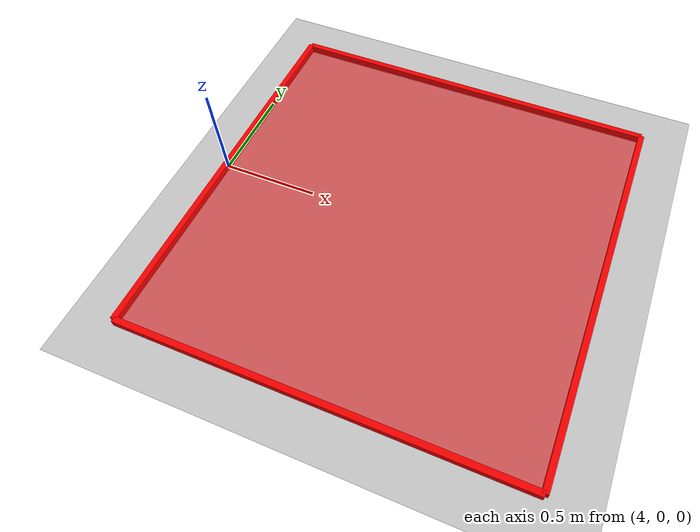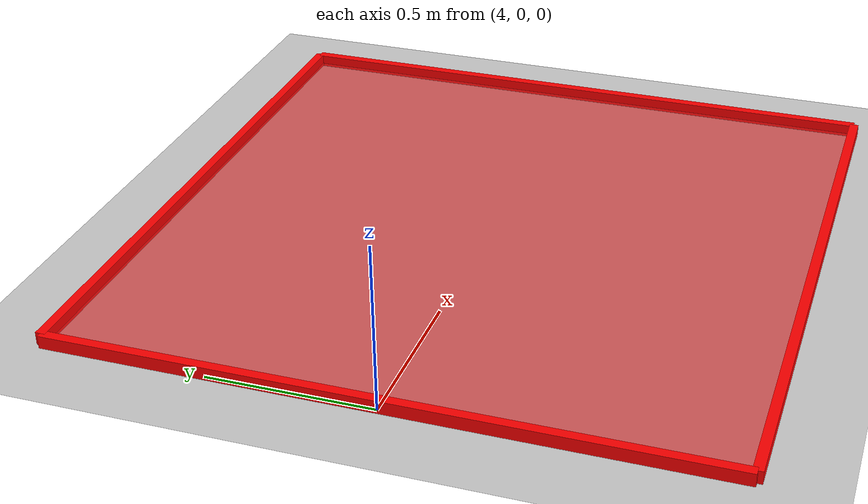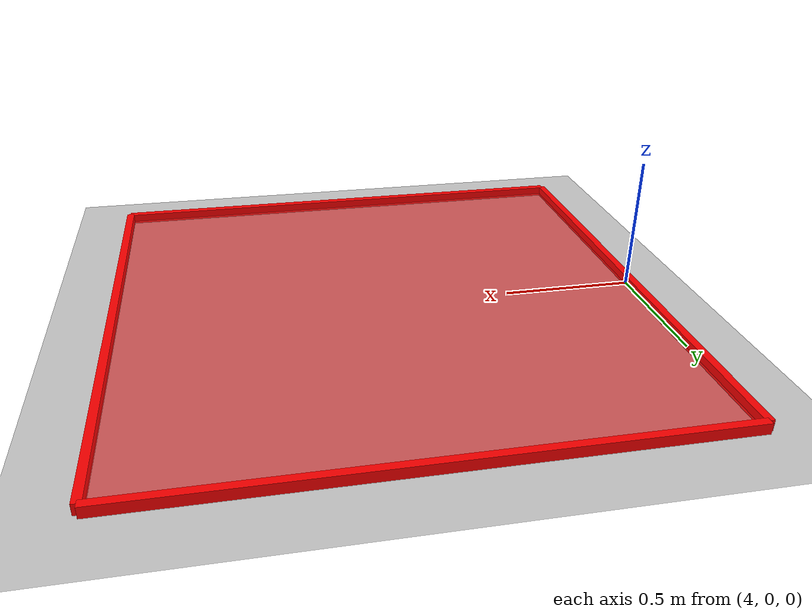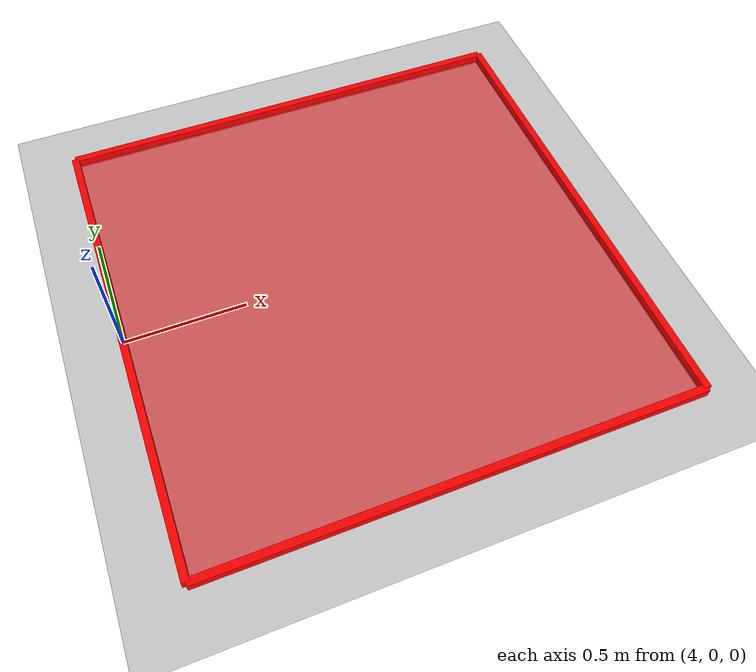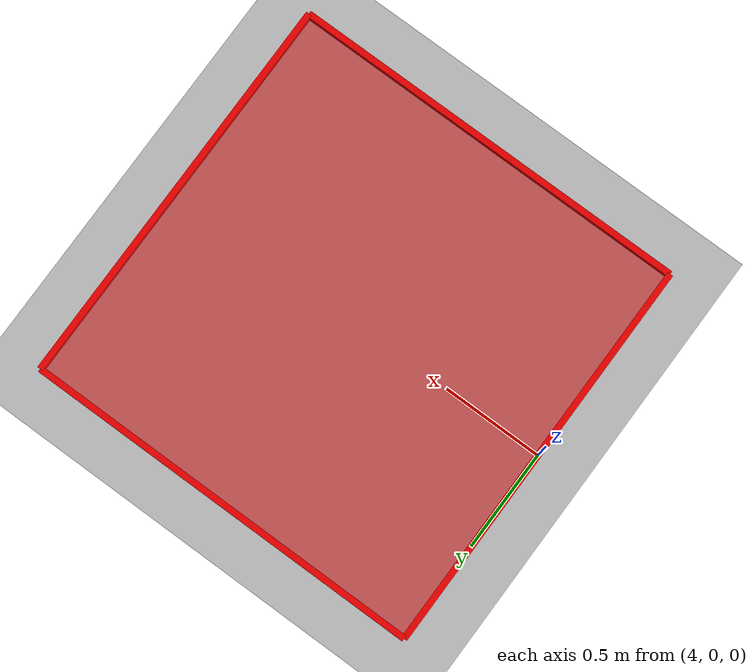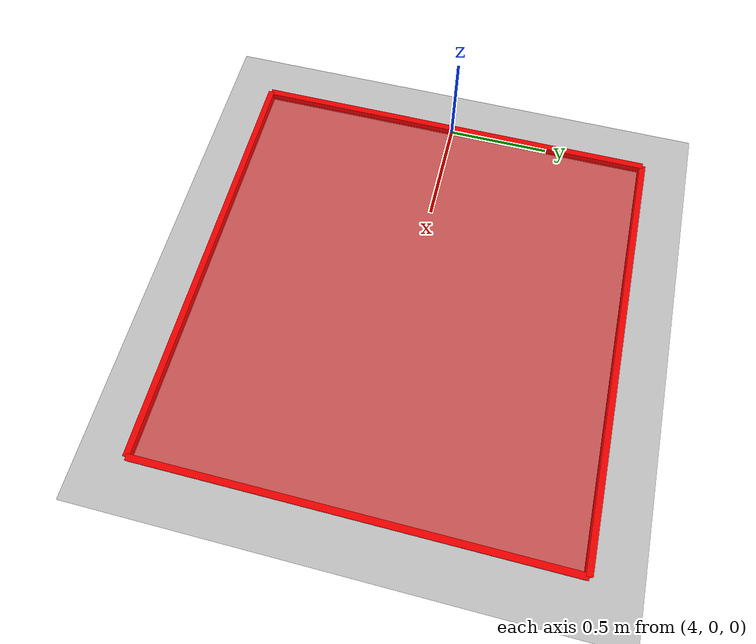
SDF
<?xml version="1.0" ?>

<sdf version="1.6">
  <world name="empty">
    <physics name="1ms" type="ignored">
      <max_step_size>0.001</max_step_size>
      <real_time_factor>1.0</real_time_factor>
    </physics>
    <plugin
      filename="gz-sim-physics-system"
      name="gz::sim::systems::Physics">
    </plugin>
    <plugin
      filename="gz-sim-user-commands-system"
      name="gz::sim::systems::UserCommands">
    </plugin>
    <plugin
      filename="gz-sim-scene-broadcaster-system"
      name="gz::sim::systems::SceneBroadcaster">
    </plugin>
    <plugin
      filename="gz-sim-contact-system"
      name="gz::sim::systems::Contact">
    </plugin>

    <plugin
      filename="gz-sim-sensors-system"
      name="gz::sim::systems::Sensors">
      <render_engine>ogre2</render_engine>
    </plugin>
    <plugin
      filename="gz-sim-imu-system"
      name="gz::sim::systems::Imu">
    </plugin>
    <plugin
      filename="gz-sim-navsat-system"
      name="gz::sim::systems::NavSat">
    </plugin>
    <!-- Set the coordinates for the world origin -->
    <spherical_coordinates>
      <surface_model>EARTH_WGS84</surface_model>
      <world_frame_orientation>ENU</world_frame_orientation>
      <latitude_deg>47.478950</latitude_deg>
      <longitude_deg>19.057785</longitude_deg>
      <elevation>0</elevation>
      <heading_deg>0</heading_deg>
    </spherical_coordinates>

    <light type="directional" name="sun">
      <cast_shadows>true</cast_shadows>
      <pose>0 0 10 0 0 0</pose>
      <diffuse>0.8 0.8 0.8 1</diffuse>
      <specular>0.2 0.2 0.2 1</specular>
      <attenuation>
        <range>1000</range>
        <constant>0.9</constant>
        <linear>0.01</linear>
        <quadratic>0.001</quadratic>
      </attenuation>
      <direction>-0.5 0.1 -0.9</direction>
    </light>

    <gravity>0 0 -9.8000000000000007</gravity>
    <magnetic_field>5.5644999999999998e-06 2.2875799999999999e-05 -4.2388400000000002e-05</magnetic_field>
    <atmosphere type='adiabatic'/>
    <scene>
      <ambient>0.400000006 0.400000006 0.400000006 1</ambient>
      <background>0.699999988 0.699999988 0.699999988 1</background>
      <shadows>true</shadows>
    </scene>

    <model name="ground_plane">
      <static>true</static>
      <link name="link">
        <collision name="collision">
          <geometry>
            <plane>
              <normal>0 0 1</normal>
              <size>100 100</size>
            </plane>
          </geometry>
          <surface>
            <friction>
              <ode>
                <mu>50</mu>
              </ode>
            </friction>
            <bounce/>
            <contact/>
          </surface>
        </collision>
        <visual name="visual">
          <geometry>
            <plane>
              <normal>0 0 1</normal>
              <size>100 100</size>
            </plane>
          </geometry>
          <material>
            <ambient>0.8 0.8 0.8 1</ambient>
            <diffuse>0.8 0.8 0.8 1</diffuse>
            <specular>0.8 0.8 0.8 1</specular>
          </material>
        </visual>
      </link>
    </model>

    <!-- Forbidden Zone: x=[4,6], y=[-1,1] — Red semi-transparent box -->
    <model name="forbidden_zone">
      <static>true</static>
      <pose>5 0 0.005 0 0 0</pose>
      <link name="zone_link">
        <visual name="zone_visual">
          <geometry>
            <box>
              <size>2 2 0.01</size>
            </box>
          </geometry>
          <material>
            <ambient>0.9 0.1 0.1 0.6</ambient>
            <diffuse>0.9 0.1 0.1 0.6</diffuse>
            <specular>0.1 0.1 0.1 1</specular>
          </material>
        </visual>
      </link>
    </model>

    <!-- Zone boundary markers (thin red lines at edges) -->
    <model name="zone_border_x_min">
      <static>true</static>
      <pose>4 0 0.02 0 0 0</pose>
      <link name="link">
        <visual name="visual">
          <geometry>
            <box><size>0.03 2 0.04</size></box>
          </geometry>
          <material>
            <ambient>1.0 0.0 0.0 1</ambient>
            <diffuse>1.0 0.0 0.0 1</diffuse>
          </material>
        </visual>
      </link>
    </model>

    <model name="zone_border_x_max">
      <static>true</static>
      <pose>6 0 0.02 0 0 0</pose>
      <link name="link">
        <visual name="visual">
          <geometry>
            <box><size>0.03 2 0.04</size></box>
          </geometry>
          <material>
            <ambient>1.0 0.0 0.0 1</ambient>
            <diffuse>1.0 0.0 0.0 1</diffuse>
          </material>
        </visual>
      </link>
    </model>

    <model name="zone_border_y_min">
      <static>true</static>
      <pose>5 -1 0.02 0 0 0</pose>
      <link name="link">
        <visual name="visual">
          <geometry>
            <box><size>2 0.03 0.04</size></box>
          </geometry>
          <material>
            <ambient>1.0 0.0 0.0 1</ambient>
            <diffuse>1.0 0.0 0.0 1</diffuse>
          </material>
        </visual>
      </link>
    </model>

    <model name="zone_border_y_max">
      <static>true</static>
      <pose>5 1 0.02 0 0 0</pose>
      <link name="link">
        <visual name="visual">
          <geometry>
            <box><size>2 0.03 0.04</size></box>
          </geometry>
          <material>
            <ambient>1.0 0.0 0.0 1</ambient>
            <diffuse>1.0 0.0 0.0 1</diffuse>
          </material>
        </visual>
      </link>
    </model>

  </world>
</sdf>
